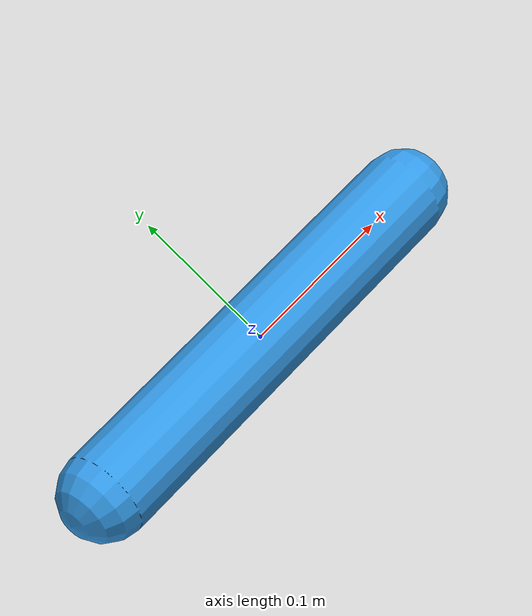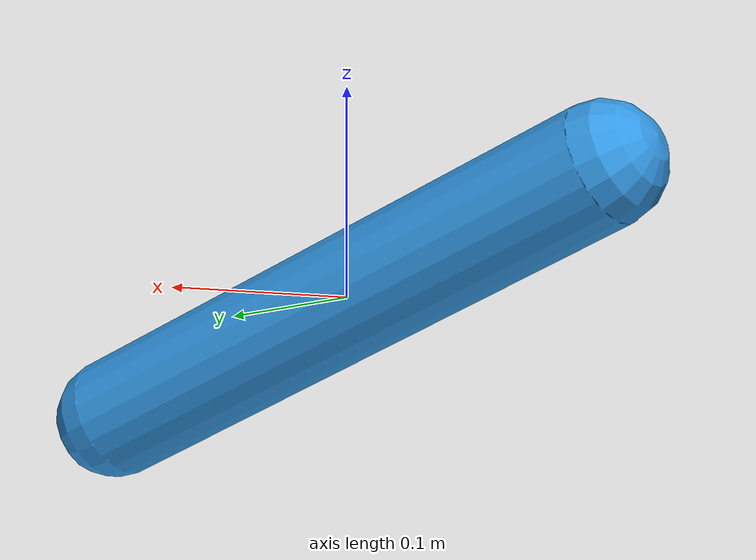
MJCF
<mujoco model="motor_position_control">
    <option timestep="0.002" gravity="0 0 0"/>
    <compiler angle="radian"/>

    <worldbody>
        <body name="motor_base" pos="0 0 0">
            <joint
                name="motor_hinge"
                type="hinge"
                axis="0 1 0"
                limited="true"
                range="0 6.283185"
                damping="0.05"
                armature="0.01"/>

            <!-- Motor arm -->
            <geom
                type="capsule"
                size="0.03 0.15"
                euler="0 90 0"
                rgba="0.2 0.6 0.9 1"/>
        </body>
    </worldbody>

    <actuator>
        <!-- Position-controlled actuator (servo) -->
        <position
            name="motor_position"
            joint="motor_hinge"
            kp="1"
            ctrlrange="0 6.283185"/>
    </actuator>
</mujoco>
